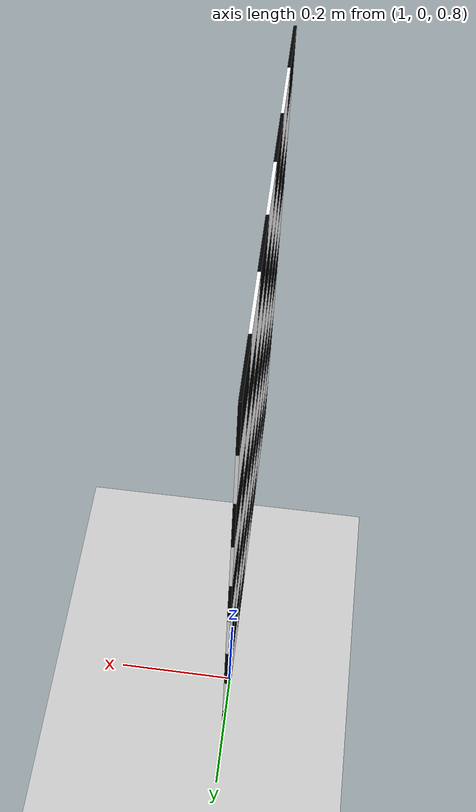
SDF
<?xml version="1.0" ?>
<sdf version="1.6">
  <world name="SRC_qual1">

    <physics type="ode">
      <real_time_update_rate>1000.0</real_time_update_rate>
      <max_step_size>0.001</max_step_size>
      <real_time_factor>1</real_time_factor>
      <ode>
        <solver>
          <type>quick</type>
          <iters>150</iters>
          <precon_iters>0</precon_iters>
          <sor>1.400000</sor>
          <use_dynamic_moi_rescaling>1</use_dynamic_moi_rescaling>
        </solver>
        <constraints>
          <cfm>0.000000</cfm>
          <erp>0.800000</erp>
          <contact_max_correcting_vel>2000.000000</contact_max_correcting_vel>
          <contact_surface_layer>0.01000</contact_surface_layer>
        </constraints>
      </ode>
    </physics>

    <!-- A global light source -->
    <light type="directional" name="sun">
      <cast_shadows>false</cast_shadows>
      <pose>0 0 10 0 0 0</pose>
      <diffuse>0.9 0.9 0.9 1</diffuse>
      <specular>0.2 0.2 0.2 1</specular>
      <attenuation>
        <range>1000</range>
        <constant>0.9</constant>
        <linear>0.01</linear>
        <quadratic>0.001</quadratic>
      </attenuation>
      <direction>0.9 0.1 -0.7</direction>
    </light>

    <!-- A ground plane -->
    <include>
      <uri>model://ground_plane</uri>
    </include>

    <model name="checkerboard">
    <pose>1.0 -0.6 0.83 0 -1.5708 0</pose>
    <static>true</static>
      <link name="checkerboard">
        <pose>0.0 0.0 0.0 0.0 0.0 0.0</pose>
        <inertial>
          <mass>0.01</mass>
          <inertia> <!-- interias are tricky to compute -->
            <!-- http://answers.gazebosim.org/question/4372/the-inertia-matrix-explained/ -->
            <ixx>0.083</ixx>       <!-- for a box: ixx = 0.083 * mass * (y*y + z*z) -->
            <ixy>0.0</ixy>         <!-- for a box: ixy = 0 -->
            <ixz>0.0</ixz>         <!-- for a box: ixz = 0 -->
            <iyy>0.083</iyy>       <!-- for a box: iyy = 0.083 * mass * (x*x + z*z) -->
            <iyz>0.0</iyz>         <!-- for a box: iyz = 0 -->
            <izz>0.083</izz>       <!-- for a box: izz = 0.083 * mass * (x*x + y*y) -->
          </inertia>
        </inertial>

        <collision name="collision">
          <geometry>
            <box>
              <size>0.108 0.108 0.005</size>
            </box>
          </geometry>
        </collision>

        <visual name="sqr11">
        <pose>0.0 0.0 0.0 0.0 0.0 0.0</pose>
          <geometry>
            <box>
              <size>0.108 0.108 0.005</size>
            </box>
          </geometry>
  	      <material>
            <ambient>0 0 0 1</ambient>
            <diffuse>0 0 0 1</diffuse>
            <specular>0.1 0.1 0.1 1</specular>
            <emissive>0 0 0 0</emissive>
          </material>
        </visual>

        <visual name="sqr12">
        <pose>0.108 0.0 0.0 0.0 0.0 0.0</pose>
          <geometry>
            <box>
              <size>0.108 0.108 0.005</size>
            </box>
          </geometry>
  	      <material>
            <ambient>1 1 1 1</ambient>
            <diffuse>1 1 1 1</diffuse>
            <specular>0.1 0.1 0.1 1</specular>
            <emissive>0 0 0 0</emissive>
          </material>
        </visual>

        <visual name="sqr13">
        <pose>0.216 0.0 0.0 0.0 0.0 0.0</pose>
          <geometry>
            <box>
              <size>0.108 0.108 0.005</size>
            </box>
          </geometry>
  	      <material>
            <ambient>0 0 0 1</ambient>
            <diffuse>0 0 0 1</diffuse>
            <specular>0.1 0.1 0.1 1</specular>
            <emissive>0 0 0 0</emissive>
          </material>
        </visual>

        <visual name="sqr14">
        <pose>0.324 0.0 0.0 0.0 0.0 0.0</pose>
          <geometry>
            <box>
              <size>0.108 0.108 0.005</size>
            </box>
          </geometry>
  	      <material>
            <ambient>1 1 1 1</ambient>
            <diffuse>1 1 1 1</diffuse>
            <specular>0.1 0.1 0.1 1</specular>
            <emissive>0 0 0 0</emissive>
          </material>
        </visual>

        <visual name="sqr15">
        <pose>0.432 0.0 0.0 0.0 0.0 0.0</pose>
          <geometry>
            <box>
              <size>0.108 0.108 0.005</size>
            </box>
          </geometry>
  	      <material>
            <ambient>0 0 0 1</ambient>
            <diffuse>0 0 0 1</diffuse>
            <specular>0.1 0.1 0.1 1</specular>
            <emissive>0 0 0 0</emissive>
          </material>
        </visual>

        <visual name="sqr16">
        <pose>0.540 0.0 0.0 0.0 0.0 0.0</pose>
          <geometry>
            <box>
              <size>0.108 0.108 0.005</size>
            </box>
          </geometry>
  	      <material>
            <ambient>1 1 1 1</ambient>
            <diffuse>1 1 1 1</diffuse>
            <specular>0.1 0.1 0.1 1</specular>
            <emissive>0 0 0 0</emissive>
          </material>
        </visual>

        <visual name="sqr17">
        <pose>0.648 0.0 0.0 0.0 0.0 0.0</pose>
          <geometry>
            <box>
              <size>0.108 0.108 0.005</size>
            </box>
          </geometry>
  	      <material>
            <ambient>0 0 0 1</ambient>
            <diffuse>0 0 0 1</diffuse>
            <specular>0.1 0.1 0.1 1</specular>
            <emissive>0 0 0 0</emissive>
          </material>
        </visual>

        <visual name="sqr18">
        <pose>0.756 0.0 0.0 0.0 0.0 0.0</pose>
          <geometry>
            <box>
              <size>0.108 0.108 0.005</size>
            </box>
          </geometry>
  	      <material>
            <ambient>1 1 1 1</ambient>
            <diffuse>1 1 1 1</diffuse>
            <specular>0.1 0.1 0.1 1</specular>
            <emissive>0 0 0 0</emissive>
          </material>
        </visual>

        <visual name="sqr19">
        <pose>0.864 0.0 0.0 0.0 0.0 0.0</pose>
          <geometry>
            <box>
              <size>0.108 0.108 0.005</size>
            </box>
          </geometry>
  	      <material>
            <ambient>0 0 0 1</ambient>
            <diffuse>0 0 0 1</diffuse>
            <specular>0.1 0.1 0.1 1</specular>
            <emissive>0 0 0 0</emissive>
          </material>
        </visual>

        <visual name="sqr21">
        <pose>0 0.108 0.0 0.0 0.0 0.0</pose>
          <geometry>
            <box>
              <size>0.108 0.108 0.005</size>
            </box>
          </geometry>
  	      <material>
            <ambient>1 1 1 1</ambient>
            <diffuse>1 1 1 1</diffuse>
            <specular>0.1 0.1 0.1 1</specular>
            <emissive>0 0 0 0</emissive>
          </material>
        </visual>

        <visual name="sqr22">
        <pose>0.108 0.108 0.0 0.0 0.0 0.0</pose>
          <geometry>
            <box>
              <size>0.108 0.108 0.005</size>
            </box>
          </geometry>
  	      <material>
            <ambient>0 0 0 1</ambient>
            <diffuse>0 0 0 1</diffuse>
            <specular>0.1 0.1 0.1 1</specular>
            <emissive>0 0 0 0</emissive>
          </material>
        </visual>

        <visual name="sqr23">
        <pose>0.216 0.108 0.0 0.0 0.0 0.0</pose>
          <geometry>
            <box>
              <size>0.108 0.108 0.005</size>
            </box>
          </geometry>
  	      <material>
            <ambient>1 1 1 1</ambient>
            <diffuse>1 1 1 1</diffuse>
            <specular>0.1 0.1 0.1 1</specular>
            <emissive>0 0 0 0</emissive>
          </material>
        </visual>

        <visual name="sqr24">
        <pose>0.324 0.108 0.0 0.0 0.0 0.0</pose>
          <geometry>
            <box>
              <size>0.108 0.108 0.005</size>
            </box>
          </geometry>
  	      <material>
            <ambient>0 0 0 1</ambient>
            <diffuse>0 0 0 1</diffuse>
            <specular>0.1 0.1 0.1 1</specular>
            <emissive>0 0 0 0</emissive>
          </material>
        </visual>

        <visual name="sqr25">
        <pose>0.432 0.108 0.0 0.0 0.0 0.0</pose>
          <geometry>
            <box>
              <size>0.108 0.108 0.005</size>
            </box>
          </geometry>
  	      <material>
            <ambient>1 1 1 1</ambient>
            <diffuse>1 1 1 1</diffuse>
            <specular>0.1 0.1 0.1 1</specular>
            <emissive>0 0 0 0</emissive>
          </material>
        </visual>

        <visual name="sqr26">
        <pose>0.540 0.108 0.0 0.0 0.0 0.0</pose>
          <geometry>
            <box>
              <size>0.108 0.108 0.005</size>
            </box>
          </geometry>
  	      <material>
            <ambient>0 0 0 1</ambient>
            <diffuse>0 0 0 1</diffuse>
            <specular>0.1 0.1 0.1 1</specular>
            <emissive>0 0 0 0</emissive>
          </material>
        </visual>

        <visual name="sqr27">
        <pose>0.648 0.108 0.0 0.0 0.0 0.0</pose>
          <geometry>
            <box>
              <size>0.108 0.108 0.005</size>
            </box>
          </geometry>
  	      <material>
            <ambient>1 1 1 1</ambient>
            <diffuse>1 1 1 1</diffuse>
            <specular>0.1 0.1 0.1 1</specular>
            <emissive>0 0 0 0</emissive>
          </material>
        </visual>

        <visual name="sqr28">
        <pose>0.756 0.108 0.0 0.0 0.0 0.0</pose>
          <geometry>
            <box>
              <size>0.108 0.108 0.005</size>
            </box>
          </geometry>
  	      <material>
            <ambient>0 0 0 1</ambient>
            <diffuse>0 0 0 1</diffuse>
            <specular>0.1 0.1 0.1 1</specular>
            <emissive>0 0 0 0</emissive>
          </material>
        </visual>

        <visual name="sqr29">
        <pose>0.864 0.108 0.0 0.0 0.0 0.0</pose>
          <geometry>
            <box>
              <size>0.108 0.108 0.005</size>
            </box>
          </geometry>
  	      <material>
            <ambient>1 1 1 1</ambient>
            <diffuse>1 1 1 1</diffuse>
            <specular>0.1 0.1 0.1 1</specular>
            <emissive>0 0 0 0</emissive>
          </material>
        </visual>

        <visual name="sqr31">
        <pose>0.0 0.216 0.0 0.0 0.0 0.0</pose>
          <geometry>
            <box>
              <size>0.108 0.108 0.005</size>
            </box>
          </geometry>
  	      <material>
            <ambient>0 0 0 1</ambient>
            <diffuse>0 0 0 1</diffuse>
            <specular>0.1 0.1 0.1 1</specular>
            <emissive>0 0 0 0</emissive>
          </material>
        </visual>

        <visual name="sqr32">
        <pose>0.108 0.216 0.0 0.0 0.0 0.0</pose>
          <geometry>
            <box>
              <size>0.108 0.108 0.005</size>
            </box>
          </geometry>
  	      <material>
            <ambient>1 1 1 1</ambient>
            <diffuse>1 1 1 1</diffuse>
            <specular>0.1 0.1 0.1 1</specular>
            <emissive>0 0 0 0</emissive>
          </material>
        </visual>

        <visual name="sqr33">
        <pose>0.216 0.216 0.0 0.0 0.0 0.0</pose>
          <geometry>
            <box>
              <size>0.108 0.108 0.005</size>
            </box>
          </geometry>
  	      <material>
            <ambient>0 0 0 1</ambient>
            <diffuse>0 0 0 1</diffuse>
            <specular>0.1 0.1 0.1 1</specular>
            <emissive>0 0 0 0</emissive>
          </material>
        </visual>

        <visual name="sqr34">
        <pose>0.324 0.216 0.0 0.0 0.0 0.0</pose>
          <geometry>
            <box>
              <size>0.108 0.108 0.005</size>
            </box>
          </geometry>
  	      <material>
            <ambient>1 1 1 1</ambient>
            <diffuse>1 1 1 1</diffuse>
            <specular>0.1 0.1 0.1 1</specular>
            <emissive>0 0 0 0</emissive>
          </material>
        </visual>

        <visual name="sqr35">
        <pose>0.432 0.216 0.0 0.0 0.0 0.0</pose>
          <geometry>
            <box>
              <size>0.108 0.108 0.005</size>
            </box>
          </geometry>
  	      <material>
            <ambient>0 0 0 1</ambient>
            <diffuse>0 0 0 1</diffuse>
            <specular>0.1 0.1 0.1 1</specular>
            <emissive>0 0 0 0</emissive>
          </material>
        </visual>

        <visual name="sqr36">
        <pose>0.540 0.216 0.0 0.0 0.0 0.0</pose>
          <geometry>
            <box>
              <size>0.108 0.108 0.005</size>
            </box>
          </geometry>
  	      <material>
            <ambient>1 1 1 1</ambient>
            <diffuse>1 1 1 1</diffuse>
            <specular>0.1 0.1 0.1 1</specular>
            <emissive>0 0 0 0</emissive>
          </material>
        </visual>

        <visual name="sqr37">
        <pose>0.648 0.216 0.0 0.0 0.0 0.0</pose>
          <geometry>
            <box>
              <size>0.108 0.108 0.005</size>
            </box>
          </geometry>
  	      <material>
            <ambient>0 0 0 1</ambient>
            <diffuse>0 0 0 1</diffuse>
            <specular>0.1 0.1 0.1 1</specular>
            <emissive>0 0 0 0</emissive>
          </material>
        </visual>

        <visual name="sqr38">
        <pose>0.756 0.216 0.0 0.0 0.0 0.0</pose>
          <geometry>
            <box>
              <size>0.108 0.108 0.005</size>
            </box>
          </geometry>
  	      <material>
            <ambient>1 1 1 1</ambient>
            <diffuse>1 1 1 1</diffuse>
            <specular>0.1 0.1 0.1 1</specular>
            <emissive>0 0 0 0</emissive>
          </material>
        </visual>

        <visual name="sqr39">
        <pose>0.864 0.216 0.0 0.0 0.0 0.0</pose>
          <geometry>
            <box>
              <size>0.108 0.108 0.005</size>
            </box>
          </geometry>
  	      <material>
            <ambient>0 0 0 1</ambient>
            <diffuse>0 0 0 1</diffuse>
            <specular>0.1 0.1 0.1 1</specular>
            <emissive>0 0 0 0</emissive>
          </material>
        </visual>

        <visual name="sqr41">
        <pose>0.0 0.324 0.0 0.0 0.0 0.0</pose>
          <geometry>
            <box>
              <size>0.108 0.108 0.005</size>
            </box>
          </geometry>
  	      <material>
            <ambient>1 1 1 1</ambient>
            <diffuse>1 1 1 1</diffuse>
            <specular>0.1 0.1 0.1 1</specular>
            <emissive>0 0 0 0</emissive>
          </material>
        </visual>

        <visual name="sqr42">
        <pose>0.108 0.324 0.0 0.0 0.0 0.0</pose>
          <geometry>
            <box>
              <size>0.108 0.108 0.005</size>
            </box>
          </geometry>
  	      <material>
            <ambient>0 0 0 1</ambient>
            <diffuse>0 0 0 1</diffuse>
            <specular>0.1 0.1 0.1 1</specular>
            <emissive>0 0 0 0</emissive>
          </material>
        </visual>

        <visual name="sqr43">
        <pose>0.216 0.324 0.0 0.0 0.0 0.0</pose>
          <geometry>
            <box>
              <size>0.108 0.108 0.005</size>
            </box>
          </geometry>
  	      <material>
            <ambient>1 1 1 1</ambient>
            <diffuse>1 1 1 1</diffuse>
            <specular>0.1 0.1 0.1 1</specular>
            <emissive>0 0 0 0</emissive>
          </material>
        </visual>

        <visual name="sqr44">
        <pose>0.324 0.324 0.0 0.0 0.0 0.0</pose>
          <geometry>
            <box>
              <size>0.108 0.108 0.005</size>
            </box>
          </geometry>
  	      <material>
            <ambient>0 0 0 1</ambient>
            <diffuse>0 0 0 1</diffuse>
            <specular>0.1 0.1 0.1 1</specular>
            <emissive>0 0 0 0</emissive>
          </material>
        </visual>

        <visual name="sqr45">
        <pose>0.432 0.324 0.0 0.0 0.0 0.0</pose>
          <geometry>
            <box>
              <size>0.108 0.108 0.005</size>
            </box>
          </geometry>
  	      <material>
            <ambient>1 1 1 1</ambient>
            <diffuse>1 1 1 1</diffuse>
            <specular>0.1 0.1 0.1 1</specular>
            <emissive>0 0 0 0</emissive>
          </material>
        </visual>

        <visual name="sqr46">
        <pose>0.540 0.324 0.0 0.0 0.0 0.0</pose>
          <geometry>
            <box>
              <size>0.108 0.108 0.005</size>
            </box>
          </geometry>
  	      <material>
            <ambient>0 0 0 1</ambient>
            <diffuse>0 0 0 1</diffuse>
            <specular>0.1 0.1 0.1 1</specular>
            <emissive>0 0 0 0</emissive>
          </material>
        </visual>

        <visual name="sqr47">
        <pose>0.648 0.324 0.0 0.0 0.0 0.0</pose>
          <geometry>
            <box>
              <size>0.108 0.108 0.005</size>
            </box>
          </geometry>
  	      <material>
            <ambient>1 1 1 1</ambient>
            <diffuse>1 1 1 1</diffuse>
            <specular>0.1 0.1 0.1 1</specular>
            <emissive>0 0 0 0</emissive>
          </material>
        </visual>

        <visual name="sqr48">
        <pose>0.756 0.324 0.0 0.0 0.0 0.0</pose>
          <geometry>
            <box>
              <size>0.108 0.108 0.005</size>
            </box>
          </geometry>
  	      <material>
            <ambient>0 0 0 1</ambient>
            <diffuse>0 0 0 1</diffuse>
            <specular>0.1 0.1 0.1 1</specular>
            <emissive>0 0 0 0</emissive>
          </material>
        </visual>

        <visual name="sqr49">
        <pose>0.864 0.324 0.0 0.0 0.0 0.0</pose>
          <geometry>
            <box>
              <size>0.108 0.108 0.005</size>
            </box>
          </geometry>
  	      <material>
            <ambient>1 1 1 1</ambient>
            <diffuse>1 1 1 1</diffuse>
            <specular>0.1 0.1 0.1 1</specular>
            <emissive>0 0 0 0</emissive>
          </material>
        </visual>

        <visual name="sqr51">
        <pose>0.0 0.432 0.0 0.0 0.0 0.0</pose>
          <geometry>
            <box>
              <size>0.108 0.108 0.005</size>
            </box>
          </geometry>
  	      <material>
            <ambient>0 0 0 1</ambient>
            <diffuse>0 0 0 1</diffuse>
            <specular>0.1 0.1 0.1 1</specular>
            <emissive>0 0 0 0</emissive>
          </material>
        </visual>

        <visual name="sqr52">
        <pose>0.108 0.432 0.0 0.0 0.0 0.0</pose>
          <geometry>
            <box>
              <size>0.108 0.108 0.005</size>
            </box>
          </geometry>
  	      <material>
            <ambient>1 1 1 1</ambient>
            <diffuse>1 1 1 1</diffuse>
            <specular>0.1 0.1 0.1 1</specular>
            <emissive>0 0 0 0</emissive>
          </material>
        </visual>

        <visual name="sqr53">
        <pose>0.216 0.432 0.0 0.0 0.0 0.0</pose>
          <geometry>
            <box>
              <size>0.108 0.108 0.005</size>
            </box>
          </geometry>
  	      <material>
            <ambient>0 0 0 1</ambient>
            <diffuse>0 0 0 1</diffuse>
            <specular>0.1 0.1 0.1 1</specular>
            <emissive>0 0 0 0</emissive>
          </material>
        </visual>

        <visual name="sqr54">
        <pose>0.324 0.432 0.0 0.0 0.0 0.0</pose>
          <geometry>
            <box>
              <size>0.108 0.108 0.005</size>
            </box>
          </geometry>
  	      <material>
            <ambient>1 1 1 1</ambient>
            <diffuse>1 1 1 1</diffuse>
            <specular>0.1 0.1 0.1 1</specular>
            <emissive>0 0 0 0</emissive>
          </material>
        </visual>

        <visual name="sqr55">
        <pose>0.432 0.432 0.0 0.0 0.0 0.0</pose>
          <geometry>
            <box>
              <size>0.108 0.108 0.005</size>
            </box>
          </geometry>
  	      <material>
            <ambient>0 0 0 1</ambient>
            <diffuse>0 0 0 1</diffuse>
            <specular>0.1 0.1 0.1 1</specular>
            <emissive>0 0 0 0</emissive>
          </material>
        </visual>

        <visual name="sqr56">
        <pose>0.540 0.432 0.0 0.0 0.0 0.0</pose>
          <geometry>
            <box>
              <size>0.108 0.108 0.005</size>
            </box>
          </geometry>
  	      <material>
            <ambient>1 1 1 1</ambient>
            <diffuse>1 1 1 1</diffuse>
            <specular>0.1 0.1 0.1 1</specular>
            <emissive>0 0 0 0</emissive>
          </material>
        </visual>

        <visual name="sqr57">
        <pose>0.648 0.432 0.0 0.0 0.0 0.0</pose>
          <geometry>
            <box>
              <size>0.108 0.108 0.005</size>
            </box>
          </geometry>
  	      <material>
            <ambient>0 0 0 1</ambient>
            <diffuse>0 0 0 1</diffuse>
            <specular>0.1 0.1 0.1 1</specular>
            <emissive>0 0 0 0</emissive>
          </material>
        </visual>

        <visual name="sqr58">
        <pose>0.756 0.432 0.0 0.0 0.0 0.0</pose>
          <geometry>
            <box>
              <size>0.108 0.108 0.005</size>
            </box>
          </geometry>
  	      <material>
            <ambient>1 1 1 1</ambient>
            <diffuse>1 1 1 1</diffuse>
            <specular>0.1 0.1 0.1 1</specular>
            <emissive>0 0 0 0</emissive>
          </material>
        </visual>

        <visual name="sqr59">
        <pose>0.864 0.432 0.0 0.0 0.0 0.0</pose>
          <geometry>
            <box>
              <size>0.108 0.108 0.005</size>
            </box>
          </geometry>
  	      <material>
            <ambient>0 0 0 1</ambient>
            <diffuse>0 0 0 1</diffuse>
            <specular>0.1 0.1 0.1 1</specular>
            <emissive>0 0 0 0</emissive>
          </material>
        </visual>

        <visual name="sqr61">
        <pose>0 0.540 0.0 0.0 0.0 0.0</pose>
          <geometry>
            <box>
              <size>0.108 0.108 0.005</size>
            </box>
          </geometry>
  	      <material>
            <ambient>1 1 1 1</ambient>
            <diffuse>1 1 1 1</diffuse>
            <specular>0.1 0.1 0.1 1</specular>
            <emissive>0 0 0 0</emissive>
          </material>
        </visual>

        <visual name="sqr62">
        <pose>0.108 0.540 0.0 0.0 0.0 0.0</pose>
          <geometry>
            <box>
              <size>0.108 0.108 0.005</size>
            </box>
          </geometry>
  	      <material>
            <ambient>0 0 0 1</ambient>
            <diffuse>0 0 0 1</diffuse>
            <specular>0.1 0.1 0.1 1</specular>
            <emissive>0 0 0 0</emissive>
          </material>
        </visual>

        <visual name="sqr63">
        <pose>0.216 0.540 0.0 0.0 0.0 0.0</pose>
          <geometry>
            <box>
              <size>0.108 0.108 0.005</size>
            </box>
          </geometry>
  	      <material>
            <ambient>1 1 1 1</ambient>
            <diffuse>1 1 1 1</diffuse>
            <specular>0.1 0.1 0.1 1</specular>
            <emissive>0 0 0 0</emissive>
          </material>
        </visual>

        <visual name="sqr64">
        <pose>0.324 0.540 0.0 0.0 0.0 0.0</pose>
          <geometry>
            <box>
              <size>0.108 0.108 0.005</size>
            </box>
          </geometry>
  	      <material>
            <ambient>0 0 0 1</ambient>
            <diffuse>0 0 0 1</diffuse>
            <specular>0.1 0.1 0.1 1</specular>
            <emissive>0 0 0 0</emissive>
          </material>
        </visual>

        <visual name="sqr65">
        <pose>0.432 0.540 0.0 0.0 0.0 0.0</pose>
          <geometry>
            <box>
              <size>0.108 0.108 0.005</size>
            </box>
          </geometry>
  	      <material>
            <ambient>1 1 1 1</ambient>
            <diffuse>1 1 1 1</diffuse>
            <specular>0.1 0.1 0.1 1</specular>
            <emissive>0 0 0 0</emissive>
          </material>
        </visual>

        <visual name="sqr66">
        <pose>0.540 0.540 0.0 0.0 0.0 0.0</pose>
          <geometry>
            <box>
              <size>0.108 0.108 0.005</size>
            </box>
          </geometry>
  	      <material>
            <ambient>0 0 0 1</ambient>
            <diffuse>0 0 0 1</diffuse>
            <specular>0.1 0.1 0.1 1</specular>
            <emissive>0 0 0 0</emissive>
          </material>
        </visual>

        <visual name="sqr67">
        <pose>0.648 0.540 0.0 0.0 0.0 0.0</pose>
          <geometry>
            <box>
              <size>0.108 0.108 0.005</size>
            </box>
          </geometry>
  	      <material>
            <ambient>1 1 1 1</ambient>
            <diffuse>1 1 1 1</diffuse>
            <specular>0.1 0.1 0.1 1</specular>
            <emissive>0 0 0 0</emissive>
          </material>
        </visual>

        <visual name="sqr68">
        <pose>0.756 0.540 0.0 0.0 0.0 0.0</pose>
          <geometry>
            <box>
              <size>0.108 0.108 0.005</size>
            </box>
          </geometry>
  	      <material>
            <ambient>0 0 0 1</ambient>
            <diffuse>0 0 0 1</diffuse>
            <specular>0.1 0.1 0.1 1</specular>
            <emissive>0 0 0 0</emissive>
          </material>
        </visual>

        <visual name="sqr69">
        <pose>0.864 0.540 0.0 0.0 0.0 0.0</pose>
          <geometry>
            <box>
              <size>0.108 0.108 0.005</size>
            </box>
          </geometry>
  	      <material>
            <ambient>1 1 1 1</ambient>
            <diffuse>1 1 1 1</diffuse>
            <specular>0.1 0.1 0.1 1</specular>
            <emissive>0 0 0 0</emissive>
          </material>
        </visual>

        <visual name="sqr71">
        <pose>0.0 0.648 0.0 0.0 0.0 0.0</pose>
          <geometry>
            <box>
              <size>0.108 0.108 0.005</size>
            </box>
          </geometry>
  	      <material>
            <ambient>0 0 0 1</ambient>
            <diffuse>0 0 0 1</diffuse>
            <specular>0.1 0.1 0.1 1</specular>
            <emissive>0 0 0 0</emissive>
          </material>
        </visual>

        <visual name="sqr72">
        <pose>0.108 0.648 0.0 0.0 0.0 0.0</pose>
          <geometry>
            <box>
              <size>0.108 0.108 0.005</size>
            </box>
          </geometry>
  	      <material>
            <ambient>1 1 1 1</ambient>
            <diffuse>1 1 1 1</diffuse>
            <specular>0.1 0.1 0.1 1</specular>
            <emissive>0 0 0 0</emissive>
          </material>
        </visual>

        <visual name="sqr73">
        <pose>0.216 0.648 0.0 0.0 0.0 0.0</pose>
          <geometry>
            <box>
              <size>0.108 0.108 0.005</size>
            </box>
          </geometry>
  	      <material>
            <ambient>0 0 0 1</ambient>
            <diffuse>0 0 0 1</diffuse>
            <specular>0.1 0.1 0.1 1</specular>
            <emissive>0 0 0 0</emissive>
          </material>
        </visual>

        <visual name="sqr74">
        <pose>0.324 0.648 0.0 0.0 0.0 0.0</pose>
          <geometry>
            <box>
              <size>0.108 0.108 0.005</size>
            </box>
          </geometry>
  	      <material>
            <ambient>1 1 1 1</ambient>
            <diffuse>1 1 1 1</diffuse>
            <specular>0.1 0.1 0.1 1</specular>
            <emissive>0 0 0 0</emissive>
          </material>
        </visual>

        <visual name="sqr75">
        <pose>0.432 0.648 0.0 0.0 0.0 0.0</pose>
          <geometry>
            <box>
              <size>0.108 0.108 0.005</size>
            </box>
          </geometry>
  	      <material>
            <ambient>0 0 0 1</ambient>
            <diffuse>0 0 0 1</diffuse>
            <specular>0.1 0.1 0.1 1</specular>
            <emissive>0 0 0 0</emissive>
          </material>
        </visual>

        <visual name="sqr76">
        <pose>0.540 0.648 0.0 0.0 0.0 0.0</pose>
          <geometry>
            <box>
              <size>0.108 0.108 0.005</size>
            </box>
          </geometry>
  	      <material>
            <ambient>1 1 1 1</ambient>
            <diffuse>1 1 1 1</diffuse>
            <specular>0.1 0.1 0.1 1</specular>
            <emissive>0 0 0 0</emissive>
          </material>
        </visual>

        <visual name="sqr77">
        <pose>0.648 0.648 0.0 0.0 0.0 0.0</pose>
          <geometry>
            <box>
              <size>0.108 0.108 0.005</size>
            </box>
          </geometry>
  	      <material>
            <ambient>0 0 0 1</ambient>
            <diffuse>0 0 0 1</diffuse>
            <specular>0.1 0.1 0.1 1</specular>
            <emissive>0 0 0 0</emissive>
          </material>
        </visual>

        <visual name="sqr78">
        <pose>0.756 0.648 0.0 0.0 0.0 0.0</pose>
          <geometry>
            <box>
              <size>0.108 0.108 0.005</size>
            </box>
          </geometry>
  	      <material>
            <ambient>1 1 1 1</ambient>
            <diffuse>1 1 1 1</diffuse>
            <specular>0.1 0.1 0.1 1</specular>
            <emissive>0 0 0 0</emissive>
          </material>
        </visual>

        <visual name="sqr79">
        <pose>0.864 0.648 0.0 0.0 0.0 0.0</pose>
          <geometry>
            <box>
              <size>0.108 0.108 0.005</size>
            </box>
          </geometry>
  	      <material>
            <ambient>0 0 0 1</ambient>
            <diffuse>0 0 0 1</diffuse>
            <specular>0.1 0.1 0.1 1</specular>
            <emissive>0 0 0 0</emissive>
          </material>
        </visual>
        </link>
    </model>

  </world>
</sdf>
